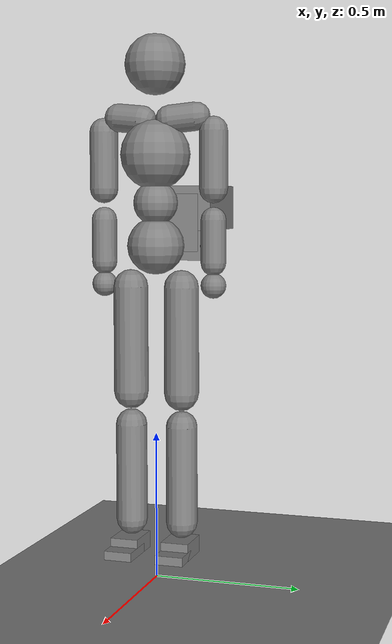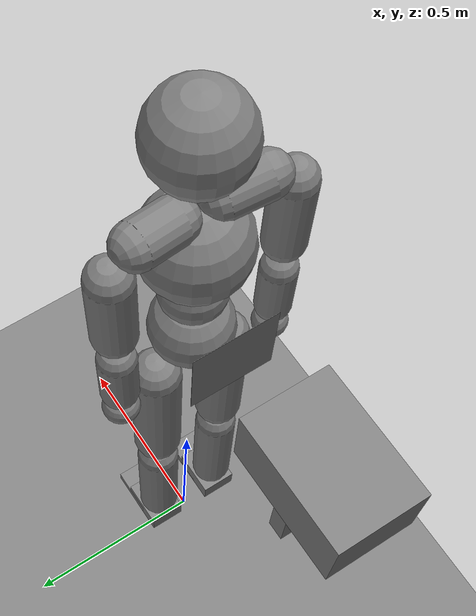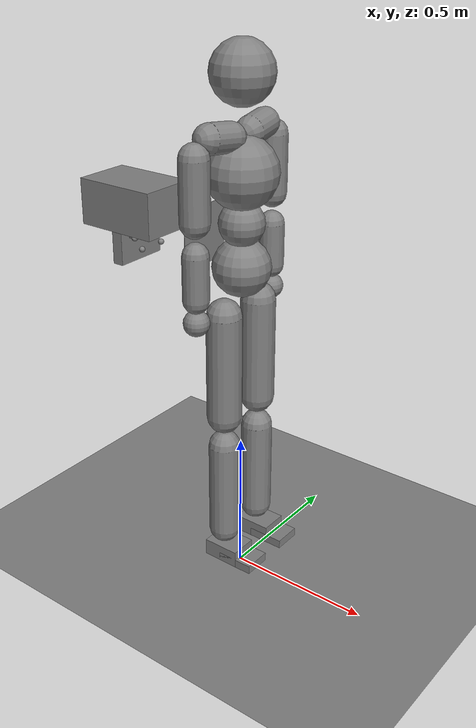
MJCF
<mujoco model="humanoid">

  <statistic extent="2" center="0.000000 0.000000 1.066667" />

  <option timestep="0.00555" />

  <default>
    <motor ctrlrange="-1 1" ctrllimited="true" />
    <default class="body">
      <geom type="capsule" condim="1" friction="1.0 0.05 0.05" solimp=".9 .99 .003" solref=".015 1" />
      <joint type="hinge" damping="0.1" stiffness="5" armature=".007" limited="true" solimplimit="0 .99 .01" />
      <site size="0.042667" group="3" />
      <default class="force-torque">
        <site type="box" size="0.010667 0.010667 0.021333" rgba="1 0 0 1" />
      </default>
      <default class="touch">
        <site type="capsule" rgba="0 0 1 .3" />
      </default>
    </default>
  </default>

  <worldbody>
    <geom name="floor" type="plane" conaffinity="1" size="106.666667 106.666667 0.213333" />
    <body name="pelvis" pos="0.000000 0.000000 1.066667" childclass="body">
      <freejoint name="root" />
      <site name="root" class="force-torque" />
      <geom name="pelvis" type="sphere" pos="0.000000 0.000000 0.074667" size="0.096000" density="2226" />
      <geom name="upper_waist" type="sphere" pos="0.000000 0.000000 0.218667" size="0.074667" density="2226" />
      <site name="pelvis" class="touch" type="sphere" pos="0.000000 0.000000 0.074667" size="0.097067" />
      <site name="upper_waist" class="touch" type="sphere" pos="0.000000 0.000000 0.218667" size="0.075733" />

      <body name="torso" pos="0.000000 0.000000 0.251894">
        <light name="top" pos="0.000000 0.000000 2.133333" mode="trackcom" />
        <camera name="back" pos="-3.200000 0.000000 1.066667" xyaxes="0 -1 0 1 0 2" mode="trackcom" />
        <camera name="side" pos="0.000000 -3.200000 1.066667" xyaxes="1 0 0 0 1 2" mode="trackcom" />
        <joint name="abdomen_x" pos="0.000000 0.000000 0.000000" axis="1 0 0" range="-60 60" stiffness="1000" damping="100" armature="0.05" />
        <joint name="abdomen_y" pos="0.000000 0.000000 0.000000" axis="0 1 0" range="-60 90" stiffness="1000" damping="100" armature="0.05" />
        <joint name="abdomen_z" pos="0.000000 0.000000 0.000000" axis="0 0 1" range="-50 50" stiffness="1000" damping="100" armature="0.05" />
        <geom name="torso" type="sphere" pos="0.000000 0.000000 0.128000" size="0.117333" density="1794" />
        <site name="torso" class="touch" type="sphere" pos="0.000000 0.000000 0.128000" size="0.118400" />

        <geom name="right_clavicle" fromto="-0.006413 -0.048829 0.244049 -0.017957 -0.136722 0.253459" size="0.048000" density="1100" />
        <geom name="left_clavicle" fromto="-0.006413 0.048829 0.244049 -0.017957 0.136722 0.253459" size="0.048000" density="1100" />

        <body name="head" pos="0.000000 0.000000 0.238820">
          <joint name="neck_x" axis="1 0 0" range="-50 50" stiffness="50" damping="5" armature=".017" />
          <joint name="neck_y" axis="0 1 0" range="-40 60" stiffness="50" damping="5" armature=".017" />
          <joint name="neck_z" axis="0 0 1" range="-45 45" stiffness="50" damping="5" armature=".017" />
          <geom name="head" type="sphere" pos="0.000000 0.000000 0.186667" size="0.101333" density="1081" />
          <site name="head" class="touch" pos="0.000000 0.000000 0.186667" type="sphere" size="0.109867" />
          <camera name="egocentric" pos="0.109867 0.000000 0.186667" xyaxes="0 -1 0 .1 0 1" fovy="80" />
        </body>

        <body name="right_upper_arm" pos="-0.025653 -0.195317 0.259733">
          <joint name="right_shoulder_x" axis="1 0 0" range="-180 45" stiffness="200" damping="20" armature=".02" />
          <joint name="right_shoulder_y" axis="0 1 0" range="-180 60" stiffness="200" damping="20" armature=".02" />
          <joint name="right_shoulder_z" axis="0 0 1" range="-90 90" stiffness="200" damping="20" armature=".02" />
          <geom name="right_upper_arm" fromto="0.000000 0.000000 -0.053333 0.000000 0.000000 -0.245333" size="0.048000" density="982" />
          <site name="right_upper_arm" class="touch" pos="0.000000 0.000000 -0.149333" size="0.049067 0.106667" zaxis="0 0 1" />

          <body name="right_lower_arm" pos="0.000000 0.000000 -0.293107">
            <joint name="right_elbow" axis="0 1 0" range="-160 0" stiffness="150" damping="15" armature=".015" />
            <geom name="right_lower_arm" fromto="0.000000 0.000000 -0.056000 0.000000 0.000000 -0.200000" size="0.042667" density="1056" />
            <site name="right_lower_arm" class="touch" pos="0.000000 0.000000 -0.128000" size="0.043733 0.073067" zaxis="0 1 0" />

            <body name="right_hand" pos="0.000000 0.000000 -0.276210">
              <geom name="right_hand" type="sphere" size="0.042667" density="1865" />
              <site name="right_hand" class="touch" type="sphere" size="0.043733" />
            </body>
          </body>
        </body>

        <body name="left_upper_arm" pos="-0.025653 0.195317 0.259733">
          <joint name="left_shoulder_x" axis="1 0 0" range="-45 180" stiffness="200" damping="20" armature=".02" />
          <joint name="left_shoulder_y" axis="0 1 0" range="-180 60" stiffness="200" damping="20" armature=".02" />
          <joint name="left_shoulder_z" axis="0 0 1" range="-90 90" stiffness="200" damping="20" armature=".02" />
          <geom name="left_upper_arm" fromto="0.000000 0.000000 -0.053333 0.000000 0.000000 -0.245333" size="0.048000" density="982" />
          <site name="left_upper_arm" class="touch" pos="0.000000 0.000000 -0.149333" size="0.049067 0.106667" zaxis="0 0 1" />

          <body name="left_lower_arm" pos="0.000000 0.000000 -0.293107">
            <joint name="left_elbow" axis="0 1 0" range="-160 0" stiffness="150" damping="15" armature=".015" />
            <geom name="left_lower_arm" fromto="0.000000 0.000000 -0.056000 0.000000 0.000000 -0.200000" size="0.042667" density="1056" />
            <site name="left_lower_arm" class="touch" pos="0.000000 0.000000 -0.106667" size="0.043733 0.073067" zaxis="0 0 1" />

            <body name="left_hand" pos="0.000000 0.000000 -0.276210">
              <geom name="left_hand" type="sphere" size="0.042667" density="1865" />
              <site name="left_hand" class="touch" type="sphere" size="0.043733" />
            </body>
          </body>
        </body>
      </body>

      <body name="right_thigh" pos="0.000000 -0.090546 0.000000">
        <site name="right_hip" class="force-torque" />
        <joint name="right_hip_x" axis="1 0 0" range="-60 15" stiffness="600" damping="60" armature="0.05" />
        <joint name="right_hip_y" axis="0 1 0" range="-140 60" stiffness="600" damping="60" armature="0.05" />
        <joint name="right_hip_z" axis="0 0 1" range="-60 35" stiffness="600" damping="60" armature="0.05" />
        <geom name="right_thigh" fromto="0.000000 0.000000 -0.064000 0.000000 0.000000 -0.424000" size="0.058667" density="1269" />
        <site name="right_thigh" class="touch" pos="0.000000 0.000000 -0.224000" size="0.059733 0.321067" zaxis="0 0 -1" />

        <body name="right_shin" pos="0.000000 0.000000 -0.489649">
          <site name="right_knee" class="force-torque" pos="0.000000 0.000000 0.000000" />
          <joint name="right_knee" pos="0.000000 0.000000 0.000000" axis="0 1 0" range="0 160" stiffness="600" damping="60" armature=".05" />
          <geom name="right_shin" fromto="0.000000 0.000000 -0.048000 0.000000 0.000000 -0.378667" size="0.053333" density="1014" />
          <site name="right_shin" class="touch" pos="0.000000 0.000000 -0.213333" size="0.054400 0.166400" zaxis="0 0 -1" />

          <body name="right_foot" pos="0.000000 0.000000 -0.437195">
            <site name="right_ankle" class="force-torque" />
            <joint name="right_ankle_x" pos="0.000000 0.000000 0.000000" axis="1 0 0" range="-30 30" stiffness="400" damping="40" armature=".05" />
            <joint name="right_ankle_y" pos="0.000000 0.000000 0.000000" axis="0 1 0" range="-55 55" stiffness="400" damping="40" armature=".05" />
            <joint name="right_ankle_z" pos="0.000000 0.000000 0.000000" axis="0 0 1" range="-40 40" stiffness="400" damping="40" armature=".05" />
            <geom name="right_foot" type="box" pos="0.018000 0.000000 -0.024000" size="0.064400 0.048000 0.029333" density="1141" />
            <geom name="right_toe" type="box" pos="0.078000 0.000000 -0.0384" size="0.064400 0.048000 0.015" density="1141" />
            <site name="right_foot" class="touch" type="box" pos="0.048000 0.000000 -0.024000" size="0.095467 0.058667 0.030400" />
          </body>
        </body>
      </body>

      <body name="left_thigh" pos="0.000000 0.090546 0.000000">
        <site name="left_hip" class="force-torque" />
        <joint name="left_hip_x" axis="1 0 0" range="-15 60" stiffness="600" damping="60" armature="0.05" />
        <joint name="left_hip_y" axis="0 1 0" range="-140 60" stiffness="600" damping="60" armature="0.05" />
        <joint name="left_hip_z" axis="0 0 1" range="-35 60" stiffness="600" damping="60" armature="0.05" />
        <geom name="left_thigh" fromto="0.000000 0.000000 -0.064000 0.000000 0.000000 -0.424000" size="0.058667" density="1269" />
        <site name="left_thigh" class="touch" pos="0.000000 0.000000 -0.224000" size="0.059733 0.321067" zaxis="0 0 -1" />

        <body name="left_shin" pos="0.000000 0.000000 -0.489649">
          <site name="left_knee" class="force-torque" pos="0.000000 0.000000 0.021333" />
          <joint name="left_knee" pos="0.000000 0.000000 0.000000" axis="0 1 0" range="0 160" stiffness="600" damping="60" armature="0.05" />
          <geom name="left_shin" fromto="0.000000 0.000000 -0.048000 0.000000 0.000000 -0.378667" size="0.053333" density="1014" />
          <site name="left_shin" class="touch" pos="0.000000 0.000000 -0.213333" size="0.054400 0.166400" zaxis="0 0 -1" />

          <body name="left_foot" pos="0.000000 0.000000 -0.437195">
            <site name="left_ankle" class="force-torque" />
            <joint name="left_ankle_x" pos="0.000000 0.000000 0.000000" axis="1 0 0" range="-30 30" stiffness="400" damping="40" armature=".05" />
            <joint name="left_ankle_y" pos="0.000000 0.000000 0.000000" axis="0 1 0" range="-55 55" stiffness="400" damping="40" armature=".05" />
            <joint name="left_ankle_z" pos="0.000000 0.000000 0.000000" axis="0 0 1" range="-40 40" stiffness="400" damping="40" armature=".05" />
            <geom name="left_foot" type="box" pos="0.018000 0.000000 -0.024000" size="0.064400 0.048000 0.029333" density="1141" />
            <geom name="left_toe" type="box" pos="0.078000 0.000000 -0.0384" size="0.064400 0.048000 0.015" density="1141"/>
            <site name="left_foot" class="touch" type="box" pos="0.048000 0.000000 -0.024000" size="0.095467 0.058667 0.030400" />
          </body>
        </body>
      </body>
      <body name="SRL" pos="-0.15 0 0.15"  >
				<geom name="board" pos="0 0 0" size="0.0005 0.1 0.1 " type="box" density='10'/>
				<body name="SRL_root" pos="-0.30 0 -0.05"  >
                    <geom type="box" size="0.15 0.10 0.08" pos="0 0 0.1"   density="8888"  name='srl_load'/>
					<geom density="10" name="SRL_geom_root" pos="0 0 0" size="0.02 0.095 0.095" type="box"/>
					<body name="SRL_right_leg1" pos="0.02 0.0475 0" quat="1.0 0.0 0.0 0.0">
						<geom density="10" fromto="0 0 0 0.01 0 0" name="SRL_geom_right_leg1" size="0.01" type="capsule"/>
						<body name="SRL_right_leg2" pos="0.01 0 0" quat="0.92388 0.0 0.38268 0.0">
							<geom density="10" fromto="0 0 0 0.01 0 0" name="SRL_geom_right_leg2" size="0.01" type="capsule"/>
							<body name="SRL_right_end" pos="0.01 0 0" quat="0.70711 0.0 -0.70711 0.0">
								<geom density="10" friction="5.0 0.05 0.05" name="SRL_geom_right_end" pos="0 0 -0.045" size="0.01" type="sphere"/>
							</body>
						</body>
					</body>
					<body name="SRL_left_leg1" pos="0.02 -0.0475 0" quat="1.0 0.0 0.0 0.0">
						<geom density="10" fromto="0 0 0 0.01 0 0" name="SRL_geom_left_leg1" size="0.01" type="capsule"/>
						<body name="SRL_left_leg2" pos="0.01 0 0" quat="0.92388 0.0 0.38268 0.0">
							<geom density="10" fromto="0 0 0 0.01 0 0" name="SRL_geom_left_leg2" size="0.01" type="capsule"/>
							<body name="SRL_left_end" pos="0.01 0 0" quat="0.70711 0.0 -0.70711 0.0">
								<geom density="10" friction="5.0 0.05 0.05" name="SRL_geom_left_end" pos="0 0 -0.045" size="0.01" type="sphere"/>
							</body>
						</body>
					</body>
				</body>
			</body>
    </body>
  </worldbody>

  <actuator>
    <motor name="abdomen_x" gear="200" joint="abdomen_x" />
    <motor name="abdomen_y" gear="200" joint="abdomen_y" />
    <motor name="abdomen_z" gear="200" joint="abdomen_z" />
    <motor name="neck_x" gear="20" joint="neck_x" />
    <motor name="neck_y" gear="20" joint="neck_y" />
    <motor name="neck_z" gear="20" joint="neck_z" />
    <motor name="right_shoulder_x" gear="70" joint="right_shoulder_x" />
    <motor name="right_shoulder_y" gear="70" joint="right_shoulder_y" />
    <motor name="right_shoulder_z" gear="70" joint="right_shoulder_z" />
    <motor name="right_elbow" gear="60" joint="right_elbow" />
    <motor name="left_shoulder_x" gear="70" joint="left_shoulder_x" />
    <motor name="left_shoulder_y" gear="70" joint="left_shoulder_y" />
    <motor name="left_shoulder_z" gear="70" joint="left_shoulder_z" />
    <motor name="left_elbow" gear="60" joint="left_elbow" />
    <motor name="right_hip_x" gear="200" joint="right_hip_x" />
    <motor name="right_hip_z" gear="200" joint="right_hip_z" />
    <motor name="right_hip_y" gear="200" joint="right_hip_y" />
    <motor name="right_knee" gear="200" joint="right_knee" />
    <motor name="right_ankle_x" gear="100" joint="right_ankle_x" />
    <motor name="right_ankle_y" gear="100" joint="right_ankle_y" />
    <motor name="right_ankle_z" gear="100" joint="right_ankle_z" />
    <motor name="left_hip_x" gear="200" joint="left_hip_x" />
    <motor name="left_hip_z" gear="200" joint="left_hip_z" />
    <motor name="left_hip_y" gear="200" joint="left_hip_y" />
    <motor name="left_knee" gear="200" joint="left_knee" />
    <motor name="left_ankle_x" gear="100" joint="left_ankle_x" />
    <motor name="left_ankle_y" gear="100" joint="left_ankle_y" />
    <motor name="left_ankle_z" gear="100" joint="left_ankle_z" />
  </actuator>

  <sensor>
    <subtreelinvel name="pelvis_subtreelinvel" body="pelvis" />
    <accelerometer name="root_accel" site="root" />
    <velocimeter name="root_vel" site="root" />
    <gyro name="root_gyro" site="root" />

    <force name="left_ankle_force" site="left_ankle" />
    <force name="right_ankle_force" site="right_ankle" />
    <force name="left_knee_force" site="left_knee" />
    <force name="right_knee_force" site="right_knee" />
    <force name="left_hip_force" site="left_hip" />
    <force name="right_hip_force" site="right_hip" />

    <torque name="left_ankle_torque" site="left_ankle" />
    <torque name="right_ankle_torque" site="right_ankle" />
    <torque name="left_knee_torque" site="left_knee" />
    <torque name="right_knee_torque" site="right_knee" />
    <torque name="left_hip_torque" site="left_hip" />
    <torque name="right_hip_torque" site="right_hip" />

    <touch name="pelvis_touch" site="pelvis" />
    <touch name="upper_waist_touch" site="upper_waist" />
    <touch name="torso_touch" site="torso" />
    <touch name="head_touch" site="head" />
    <touch name="right_upper_arm_touch" site="right_upper_arm" />
    <touch name="right_lower_arm_touch" site="right_lower_arm" />
    <touch name="right_hand_touch" site="right_hand" />
    <touch name="left_upper_arm_touch" site="left_upper_arm" />
    <touch name="left_lower_arm_touch" site="left_lower_arm" />
    <touch name="left_hand_touch" site="left_hand" />
    <touch name="right_thigh_touch" site="right_thigh" />
    <touch name="right_shin_touch" site="right_shin" />
    <touch name="right_foot_touch" site="right_foot" />
    <touch name="left_thigh_touch" site="left_thigh" />
    <touch name="left_shin_touch" site="left_shin" />
    <touch name="left_foot_touch" site="left_foot" />
  </sensor>

</mujoco>
